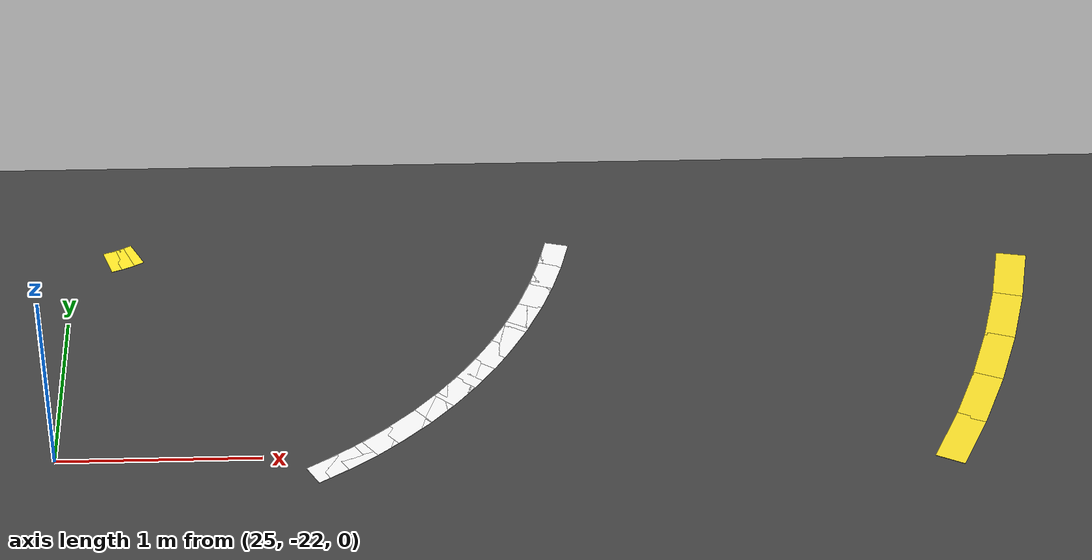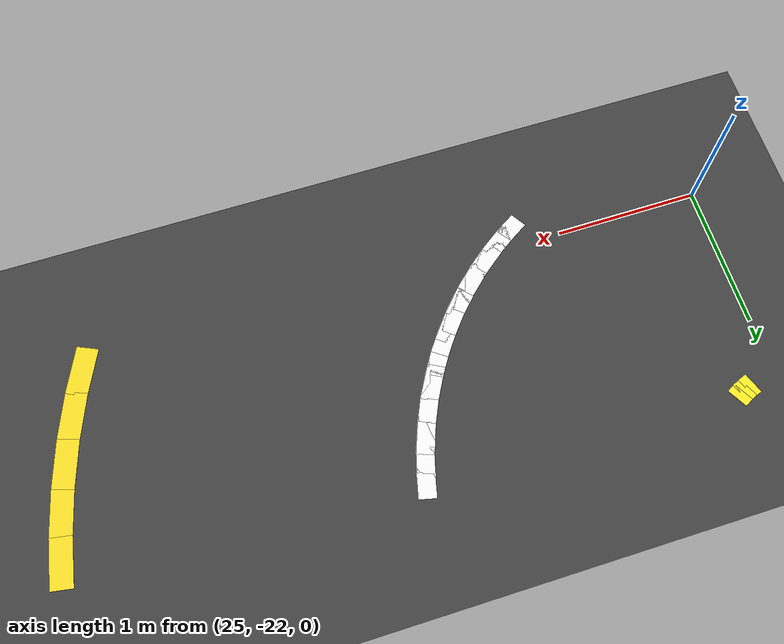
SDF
<sdf version="1.7">
 <world name="compact_city">
  <model name="ground_plane">
   <static>1</static>
   <pose>0 0 0.01 0 -0 0</pose>
   <link name="link">
    <collision name="collision">
     <geometry><plane><normal>0 0 1</normal><size>200 200</size></plane></geometry>
    </collision>
    <visual name="visual">
     <geometry><plane><normal>0 0 1</normal><size>200 200</size></plane></geometry>
     <material>
      <ambient>0.2 0.2 0.2 1</ambient>
      <diffuse>0.25 0.25 0.25 1</diffuse>
      <specular>0.1 0.1 0.1 1</specular>
     </material>
    </visual>
   </link>
  </model>
  <model name="ac_578">
   <static>1</static>
   <pose>26.3202 -22.123 0.038 0 -0 0.556315</pose>
   <link name="link">
    <visual name="v">
     <geometry><box><size>0.173411 0.12 0.002</size></box></geometry>
     <material><ambient>1 1 1 1</ambient><diffuse>0.95 0.95 0.95 1</diffuse></material>
    </visual>
   </link>
  </model>
  <model name="ac_579">
   <static>1</static>
   <pose>26.4562 -22.0321 0.038 0 -0 0.621815</pose>
   <link name="link">
    <visual name="v">
     <geometry><box><size>0.173411 0.12 0.002</size></box></geometry>
     <material><ambient>1 1 1 1</ambient><diffuse>0.95 0.95 0.95 1</diffuse></material>
    </visual>
   </link>
  </model>
  <model name="ac_580">
   <static>1</static>
   <pose>26.586 -21.9325 0.038 0 -0 0.687215</pose>
   <link name="link">
    <visual name="v">
     <geometry><box><size>0.173411 0.12 0.002</size></box></geometry>
     <material><ambient>1 1 1 1</ambient><diffuse>0.95 0.95 0.95 1</diffuse></material>
    </visual>
   </link>
  </model>
  <model name="ac_581">
   <static>1</static>
   <pose>26.709 -21.8247 0.038 0 -0 0.752715</pose>
   <link name="link">
    <visual name="v">
     <geometry><box><size>0.173411 0.12 0.002</size></box></geometry>
     <material><ambient>1 1 1 1</ambient><diffuse>0.95 0.95 0.95 1</diffuse></material>
    </visual>
   </link>
  </model>
  <model name="ac_582">
   <static>1</static>
   <pose>26.8247 -21.709 0.038 0 -0 0.818115</pose>
   <link name="link">
    <visual name="v">
     <geometry><box><size>0.173411 0.12 0.002</size></box></geometry>
     <material><ambient>1 1 1 1</ambient><diffuse>0.95 0.95 0.95 1</diffuse></material>
    </visual>
   </link>
  </model>
  <model name="ac_583">
   <static>1</static>
   <pose>26.9325 -21.586 0.038 0 -0 0.883615</pose>
   <link name="link">
    <visual name="v">
     <geometry><box><size>0.173411 0.12 0.002</size></box></geometry>
     <material><ambient>1 1 1 1</ambient><diffuse>0.95 0.95 0.95 1</diffuse></material>
    </visual>
   </link>
  </model>
  <model name="ac_584">
   <static>1</static>
   <pose>27.0321 -21.4562 0.038 0 -0 0.949015</pose>
   <link name="link">
    <visual name="v">
     <geometry><box><size>0.173411 0.12 0.002</size></box></geometry>
     <material><ambient>1 1 1 1</ambient><diffuse>0.95 0.95 0.95 1</diffuse></material>
    </visual>
   </link>
  </model>
  <model name="ac_585">
   <static>1</static>
   <pose>27.123 -21.3202 0.038 0 -0 1.01452</pose>
   <link name="link">
    <visual name="v">
     <geometry><box><size>0.173411 0.12 0.002</size></box></geometry>
     <material><ambient>1 1 1 1</ambient><diffuse>0.95 0.95 0.95 1</diffuse></material>
    </visual>
   </link>
  </model>
  <model name="ac_586">
   <static>1</static>
   <pose>27.2048 -21.1785 0.038 0 -0 1.07991</pose>
   <link name="link">
    <visual name="v">
     <geometry><box><size>0.173411 0.12 0.002</size></box></geometry>
     <material><ambient>1 1 1 1</ambient><diffuse>0.95 0.95 0.95 1</diffuse></material>
    </visual>
   </link>
  </model>
  <model name="ac_587">
   <static>1</static>
   <pose>27.2772 -21.0318 0.038 0 -0 1.14542</pose>
   <link name="link">
    <visual name="v">
     <geometry><box><size>0.173411 0.12 0.002</size></box></geometry>
     <material><ambient>1 1 1 1</ambient><diffuse>0.95 0.95 0.95 1</diffuse></material>
    </visual>
   </link>
  </model>
  <model name="ac_588">
   <static>1</static>
   <pose>27.3398 -20.8806 0.038 0 -0 1.21081</pose>
   <link name="link">
    <visual name="v">
     <geometry><box><size>0.173411 0.12 0.002</size></box></geometry>
     <material><ambient>1 1 1 1</ambient><diffuse>0.95 0.95 0.95 1</diffuse></material>
    </visual>
   </link>
  </model>
  <model name="ac_589">
   <static>1</static>
   <pose>27.3924 -20.7257 0.038 0 -0 1.27632</pose>
   <link name="link">
    <visual name="v">
     <geometry><box><size>0.173411 0.12 0.002</size></box></geometry>
     <material><ambient>1 1 1 1</ambient><diffuse>0.95 0.95 0.95 1</diffuse></material>
    </visual>
   </link>
  </model>
  <model name="ac_590">
   <static>1</static>
   <pose>27.4347 -20.5677 0.038 0 -0 1.34171</pose>
   <link name="link">
    <visual name="v">
     <geometry><box><size>0.173411 0.12 0.002</size></box></geometry>
     <material><ambient>1 1 1 1</ambient><diffuse>0.95 0.95 0.95 1</diffuse></material>
    </visual>
   </link>
  </model>
  <model name="ao_635">
   <static>1</static>
   <pose>29.3721 -21.981 0.038 0 -0 1.14542</pose>
   <link name="link">
    <visual name="v">
     <geometry><box><size>0.329808 0.15 0.002</size></box></geometry>
     <material><ambient>0.9 0.8 0.1 1</ambient><diffuse>0.95 0.85 0.15 1</diffuse></material>
    </visual>
   </link>
  </model>
  <model name="ao_636">
   <static>1</static>
   <pose>29.4923 -21.6908 0.038 0 -0 1.21081</pose>
   <link name="link">
    <visual name="v">
     <geometry><box><size>0.329808 0.15 0.002</size></box></geometry>
     <material><ambient>0.9 0.8 0.1 1</ambient><diffuse>0.95 0.85 0.15 1</diffuse></material>
    </visual>
   </link>
  </model>
  <model name="ao_637">
   <static>1</static>
   <pose>29.5933 -21.3934 0.038 0 -0 1.27632</pose>
   <link name="link">
    <visual name="v">
     <geometry><box><size>0.329808 0.15 0.002</size></box></geometry>
     <material><ambient>0.9 0.8 0.1 1</ambient><diffuse>0.95 0.85 0.15 1</diffuse></material>
    </visual>
   </link>
  </model>
  <model name="ao_638">
   <static>1</static>
   <pose>29.6746 -21.09 0.038 0 -0 1.34171</pose>
   <link name="link">
    <visual name="v">
     <geometry><box><size>0.329808 0.15 0.002</size></box></geometry>
     <material><ambient>0.9 0.8 0.1 1</ambient><diffuse>0.95 0.85 0.15 1</diffuse></material>
    </visual>
   </link>
  </model>
  <model name="ao_639">
   <static>1</static>
   <pose>29.7359 -20.7819 0.038 0 -0 1.40722</pose>
   <link name="link">
    <visual name="v">
     <geometry><box><size>0.329808 0.15 0.002</size></box></geometry>
     <material><ambient>0.9 0.8 0.1 1</ambient><diffuse>0.95 0.85 0.15 1</diffuse></material>
    </visual>
   </link>
  </model>
  <model name="arc_c_396">
   <static>1</static>
   <pose>26.3879 -22.0771 0.038 0 -0 0.589</pose>
   <link name="link">
    <visual name="visual">
     <geometry><box><size>0.216299 0.12 0.002</size></box></geometry>
     <material><ambient>1 1 1 1</ambient><diffuse>0.95 0.95 0.95 1</diffuse></material>
    </visual>
   </link>
  </model>
  <model name="arc_c_397">
   <static>1</static>
   <pose>26.5465 -21.9618 0.038 0 -0 0.6676</pose>
   <link name="link">
    <visual name="visual">
     <geometry><box><size>0.216299 0.12 0.002</size></box></geometry>
     <material><ambient>1 1 1 1</ambient><diffuse>0.95 0.95 0.95 1</diffuse></material>
    </visual>
   </link>
  </model>
  <model name="arc_c_398">
   <static>1</static>
   <pose>26.6957 -21.8344 0.038 0 -0 0.7461</pose>
   <link name="link">
    <visual name="visual">
     <geometry><box><size>0.216299 0.12 0.002</size></box></geometry>
     <material><ambient>1 1 1 1</ambient><diffuse>0.95 0.95 0.95 1</diffuse></material>
    </visual>
   </link>
  </model>
  <model name="arc_c_399">
   <static>1</static>
   <pose>26.8344 -21.6957 0.038 0 -0 0.8247</pose>
   <link name="link">
    <visual name="visual">
     <geometry><box><size>0.216299 0.12 0.002</size></box></geometry>
     <material><ambient>1 1 1 1</ambient><diffuse>0.95 0.95 0.95 1</diffuse></material>
    </visual>
   </link>
  </model>
  <model name="arc_c_400">
   <static>1</static>
   <pose>26.9618 -21.5465 0.038 0 -0 0.9032</pose>
   <link name="link">
    <visual name="visual">
     <geometry><box><size>0.216299 0.12 0.002</size></box></geometry>
     <material><ambient>1 1 1 1</ambient><diffuse>0.95 0.95 0.95 1</diffuse></material>
    </visual>
   </link>
  </model>
  <model name="arc_c_401">
   <static>1</static>
   <pose>27.0771 -21.3879 0.038 0 -0 0.9817</pose>
   <link name="link">
    <visual name="visual">
     <geometry><box><size>0.216299 0.12 0.002</size></box></geometry>
     <material><ambient>1 1 1 1</ambient><diffuse>0.95 0.95 0.95 1</diffuse></material>
    </visual>
   </link>
  </model>
  <model name="arc_c_402">
   <static>1</static>
   <pose>27.1796 -21.2206 0.038 0 -0 1.0603</pose>
   <link name="link">
    <visual name="visual">
     <geometry><box><size>0.216299 0.12 0.002</size></box></geometry>
     <material><ambient>1 1 1 1</ambient><diffuse>0.95 0.95 0.95 1</diffuse></material>
    </visual>
   </link>
  </model>
  <model name="arc_c_403">
   <static>1</static>
   <pose>27.2686 -21.0458 0.038 0 -0 1.1388</pose>
   <link name="link">
    <visual name="visual">
     <geometry><box><size>0.216299 0.12 0.002</size></box></geometry>
     <material><ambient>1 1 1 1</ambient><diffuse>0.95 0.95 0.95 1</diffuse></material>
    </visual>
   </link>
  </model>
  <model name="arc_c_404">
   <static>1</static>
   <pose>27.3437 -20.8646 0.038 0 -0 1.2174</pose>
   <link name="link">
    <visual name="visual">
     <geometry><box><size>0.216299 0.12 0.002</size></box></geometry>
     <material><ambient>1 1 1 1</ambient><diffuse>0.95 0.95 0.95 1</diffuse></material>
    </visual>
   </link>
  </model>
  <model name="arc_c_405">
   <static>1</static>
   <pose>27.4043 -20.6781 0.038 0 -0 1.2959</pose>
   <link name="link">
    <visual name="visual">
     <geometry><box><size>0.216299 0.12 0.002</size></box></geometry>
     <material><ambient>1 1 1 1</ambient><diffuse>0.95 0.95 0.95 1</diffuse></material>
    </visual>
   </link>
  </model>
  <model name="arc_in_413">
   <static>1</static>
   <pose>25.2075 -20.5625 0.038 0 -0 0.3534</pose>
   <link name="link">
    <visual name="visual">
     <geometry><box><size>0.067112 0.15 0.002</size></box></geometry>
     <material><ambient>0.95 0.85 0.1 1</ambient><diffuse>1 0.9 0.15 1</diffuse></material>
    </visual>
   </link>
  </model>
  <model name="arc_in_414">
   <static>1</static>
   <pose>25.251 -20.5445 0.038 0 -0 0.432</pose>
   <link name="link">
    <visual name="visual">
     <geometry><box><size>0.067112 0.15 0.002</size></box></geometry>
     <material><ambient>0.95 0.85 0.1 1</ambient><diffuse>1 0.9 0.15 1</diffuse></material>
    </visual>
   </link>
  </model>
  <model name="arc_in_415">
   <static>1</static>
   <pose>25.2929 -20.5231 0.038 0 -0 0.5105</pose>
   <link name="link">
    <visual name="visual">
     <geometry><box><size>0.067112 0.15 0.002</size></box></geometry>
     <material><ambient>0.95 0.85 0.1 1</ambient><diffuse>1 0.9 0.15 1</diffuse></material>
    </visual>
   </link>
  </model>
 </world>
</sdf>
